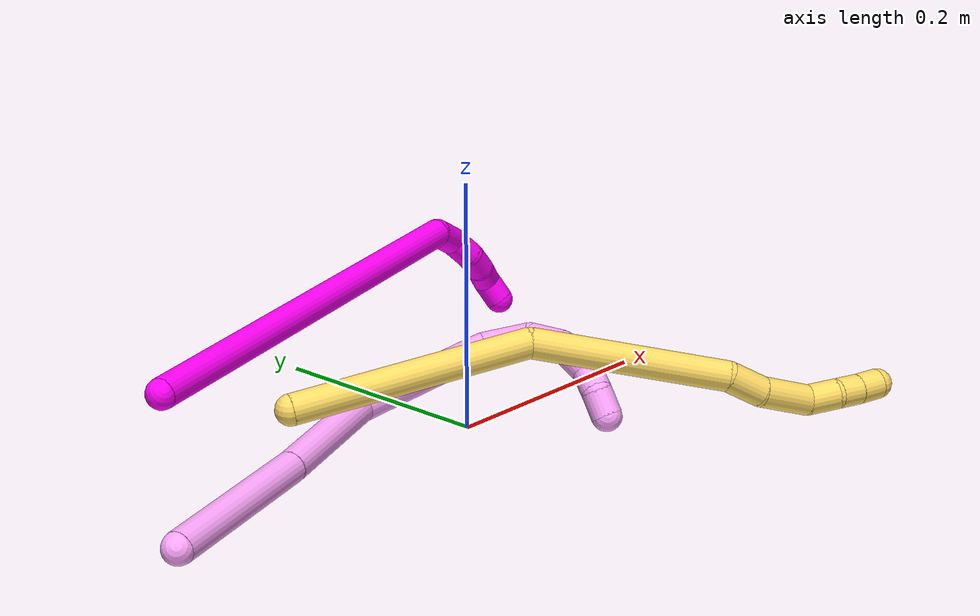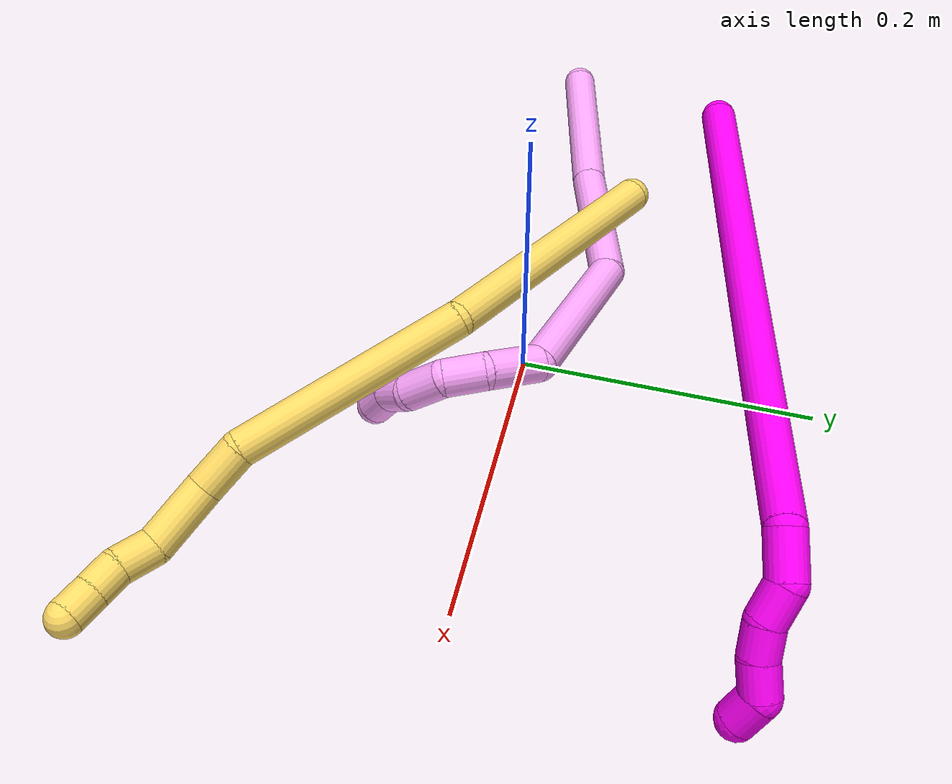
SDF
<sdf version="1.7">
 <world name="default">
  <model name="photoneo_s_sensor">
   <static>1</static>
   <pose>0 0 2 1.57079 1.57079 3.14159</pose>
   <link name="link">
    <inertial><mass>0.1</mass></inertial>
    <sensor name="sensor" type="depth">
     <update_rate>30</update_rate>
     <camera>
      <horizontal_fov>1.22</horizontal_fov>
      <image><width>1920</width><height>1200</height><format>B8G8R8</format></image>
      <clip><near>0.1</near><far>4</far></clip>
      <depth_camera><output>points</output></depth_camera>
     </camera>
     <plugin name="camera_plugin" filename="libgazebo_ros_depth_camera.so">
      <baseline>0.2</baseline>
      <alwaysOn>1</alwaysOn>
      <updateRate>0.0</updateRate>
      <cameraName>camera_ir</cameraName>
      <imageTopicName>/camera/color/image_raw</imageTopicName>
      <cameraInfoTopicName>/camera/color/camera_info</cameraInfoTopicName>
      <depthImageTopicName>/camera/depth/image_raw</depthImageTopicName>
      <depthImageCameraInfoTopicName>/camera/depth/camera_info</depthImageCameraInfoTopicName>
      <pointCloudTopicName>/camera/depth/points</pointCloudTopicName>
      <frameName>fr_optical</frameName>
      <pointCloudCutoff>0.1</pointCloudCutoff>
      <pointCloudCutoffMax>2.0</pointCloudCutoffMax>
      <distortionK1>0</distortionK1>
      <distortionK2>0</distortionK2>
      <distortionK3>0</distortionK3>
      <distortionT1>0</distortionT1>
      <distortionT2>0</distortionT2>
      <CxPrime>0</CxPrime>
      <Cx>0</Cx>
      <Cy>0</Cy>
      <focalLength>0</focalLength>
      <hackBaseline>0</hackBaseline>
     </plugin>
    </sensor>
   </link>
  </model>
  <model name="bin">
   <static>1</static>
   <link name="bottom">
    <collision name="collision-bottom">
     <pose>0 0 -0.01 0 -0 0</pose>
     <geometry><box><size>0.8 0.6 0.02</size></box></geometry>
     <surface>
      <friction><ode><mu>100</mu><mu2>100</mu2></ode></friction>
      <contact><collide_bitmask>65535</collide_bitmask></contact>
     </surface>
    </collision>
   </link>
   <link name="west_wall">
    <collision name="collision-west_wall">
     <pose>-0.41 0 0.1 0 -0 0</pose>
     <geometry><box><size>0.02 0.6 0.2</size></box></geometry>
     <surface>
      <friction><ode><mu>100</mu><mu2>100</mu2></ode></friction>
      <contact><collide_bitmask>65535</collide_bitmask></contact>
     </surface>
    </collision>
   </link>
   <link name="east_wall">
    <collision name="collision-east_wall">
     <pose>0.41 0 0.1 0 -0 0</pose>
     <geometry><box><size>0.02 0.6 0.2</size></box></geometry>
     <surface>
      <friction><ode><mu>100</mu><mu2>100</mu2></ode></friction>
      <contact><collide_bitmask>65535</collide_bitmask></contact>
     </surface>
    </collision>
   </link>
   <link name="south_wall">
    <collision name="collision-south_wall">
     <pose>0 -0.31 0.1 0 -0 0</pose>
     <geometry><box><size>0.8 0.02 0.2</size></box></geometry>
     <surface>
      <friction><ode><mu>100</mu><mu2>100</mu2></ode></friction>
      <contact><collide_bitmask>65535</collide_bitmask></contact>
     </surface>
    </collision>
   </link>
   <link name="north_wall">
    <collision name="collision-north_wall">
     <pose>0 0.31 0.1 0 -0 0</pose>
     <geometry><box><size>0.8 0.02 0.2</size></box></geometry>
     <surface>
      <friction><ode><mu>100</mu><mu2>100</mu2></ode></friction>
      <contact><collide_bitmask>65535</collide_bitmask></contact>
     </surface>
    </collision>
   </link>
  </model>
  <model name="4">
   <static>0</static>
   <link name="4">
    <collision name="collision-cylinder-e_1_1_4">
     <pose>0.046849 0.014359 -0.047673 -2.84904 0.754995 -2.43009</pose>
     <geometry><cylinder><radius>0.0125</radius><length>0.13673</length></cylinder></geometry>
     <surface>
      <friction><ode><mu>1.16</mu><mu2>1.16</mu2><slip1>0</slip1><slip2>0</slip2></ode></friction>
      <contact><ode><kp>1e+06</kp><kd>1</kd><max_vel>0</max_vel><min_depth>0.001</min_depth></ode></contact>
     </surface>
    </collision>
    <visual name="visual-cylinder-e_1_1_4">
     <pose>0.046849 0.014359 -0.047673 -2.84904 0.754995 -2.43009</pose>
     <geometry><cylinder><radius>0.0125</radius><length>0.13673</length></cylinder></geometry>
     <material><ambient>1 0.65098 0.996078 1</ambient></material>
    </visual>
    <collision name="collision-cylinder-e_2_4_5">
     <pose>0.129032 0.043136 -0.133375 -2.77918 0.715284 -2.22994</pose>
     <geometry><cylinder><radius>0.0125</radius><length>0.10775</length></cylinder></geometry>
     <surface>
      <friction><ode><mu>1.16</mu><mu2>1.16</mu2><slip1>0</slip1><slip2>0</slip2></ode></friction>
      <contact><ode><kp>1e+06</kp><kd>1</kd><max_vel>0</max_vel><min_depth>0.001</min_depth></ode></contact>
     </surface>
    </collision>
    <visual name="visual-cylinder-e_2_4_5">
     <pose>0.129032 0.043136 -0.133375 -2.77918 0.715284 -2.22994</pose>
     <geometry><cylinder><radius>0.0125</radius><length>0.10775</length></cylinder></geometry>
     <material><ambient>1 0.65098 0.996078 1</ambient></material>
    </visual>
    <collision name="collision-cylinder-e_3_5_6">
     <pose>0.220855 0.058849 -0.191584 -3.07759 1.22703 -3.05073</pose>
     <geometry><cylinder><radius>0.0125</radius><length>0.120002</length></cylinder></geometry>
     <surface>
      <friction><ode><mu>1.16</mu><mu2>1.16</mu2><slip1>0</slip1><slip2>0</slip2></ode></friction>
      <contact><ode><kp>1e+06</kp><kd>1</kd><max_vel>0</max_vel><min_depth>0.001</min_depth></ode></contact>
     </surface>
    </collision>
    <visual name="visual-cylinder-e_3_5_6">
     <pose>0.220855 0.058849 -0.191584 -3.07759 1.22703 -3.05073</pose>
     <geometry><cylinder><radius>0.0125</radius><length>0.120002</length></cylinder></geometry>
     <material><ambient>1 0.65098 0.996078 1</ambient></material>
    </visual>
    <collision name="collision-cylinder-e_4_6_7">
     <pose>0.294668 0.054033 -0.207148 0.923546 1.15457 0.626877</pose>
     <geometry><cylinder><radius>0.0125</radius><length>0.03788</length></cylinder></geometry>
     <surface>
      <friction><ode><mu>1.16</mu><mu2>1.16</mu2><slip1>0</slip1><slip2>0</slip2></ode></friction>
      <contact><ode><kp>1e+06</kp><kd>1</kd><max_vel>0</max_vel><min_depth>0.001</min_depth></ode></contact>
     </surface>
    </collision>
    <visual name="visual-cylinder-e_4_6_7">
     <pose>0.294668 0.054033 -0.207148 0.923546 1.15457 0.626877</pose>
     <geometry><cylinder><radius>0.0125</radius><length>0.03788</length></cylinder></geometry>
     <material><ambient>1 0.65098 0.996078 1</ambient></material>
    </visual>
    <collision name="collision-cylinder-e_5_7_8">
     <pose>0.321183 0.038396 -0.198729 1.19116 0.730584 0.507197</pose>
     <geometry><cylinder><radius>0.0125</radius><length>0.02755</length></cylinder></geometry>
     <surface>
      <friction><ode><mu>1.16</mu><mu2>1.16</mu2><slip1>0</slip1><slip2>0</slip2></ode></friction>
      <contact><ode><kp>1e+06</kp><kd>1</kd><max_vel>0</max_vel><min_depth>0.001</min_depth></ode></contact>
     </surface>
    </collision>
    <visual name="visual-cylinder-e_5_7_8">
     <pose>0.321183 0.038396 -0.198729 1.19116 0.730584 0.507197</pose>
     <geometry><cylinder><radius>0.0125</radius><length>0.02755</length></cylinder></geometry>
     <material><ambient>1 0.65098 0.996078 1</ambient></material>
    </visual>
    <collision name="collision-cylinder-e_6_8_9">
     <pose>0.333935 0.015329 -0.1936 1.47315 0.255939 0.232318</pose>
     <geometry><cylinder><radius>0.0125</radius><length>0.028122</length></cylinder></geometry>
     <surface>
      <friction><ode><mu>1.16</mu><mu2>1.16</mu2><slip1>0</slip1><slip2>0</slip2></ode></friction>
      <contact><ode><kp>1e+06</kp><kd>1</kd><max_vel>0</max_vel><min_depth>0.001</min_depth></ode></contact>
     </surface>
    </collision>
    <visual name="visual-cylinder-e_6_8_9">
     <pose>0.333935 0.015329 -0.1936 1.47315 0.255939 0.232318</pose>
     <geometry><cylinder><radius>0.0125</radius><length>0.028122</length></cylinder></geometry>
     <material><ambient>1 0.65098 0.996078 1</ambient></material>
    </visual>
    <collision name="collision-cylinder-e_7_9_10">
     <pose>0.336183 -0.007887 -0.189457 1.28753 -0.129441 -0.097194</pose>
     <geometry><cylinder><radius>0.0125</radius><length>0.020329</length></cylinder></geometry>
     <surface>
      <friction><ode><mu>1.16</mu><mu2>1.16</mu2><slip1>0</slip1><slip2>0</slip2></ode></friction>
      <contact><ode><kp>1e+06</kp><kd>1</kd><max_vel>0</max_vel><min_depth>0.001</min_depth></ode></contact>
     </surface>
    </collision>
    <visual name="visual-cylinder-e_7_9_10">
     <pose>0.336183 -0.007887 -0.189457 1.28753 -0.129441 -0.097194</pose>
     <geometry><cylinder><radius>0.0125</radius><length>0.020329</length></cylinder></geometry>
     <material><ambient>1 0.65098 0.996078 1</ambient></material>
    </visual>
    <collision name="collision-cylinder-e_8_10_2">
     <pose>0.333588 -0.028253 -0.187724 1.67187 -0.118865 -0.131496</pose>
     <geometry><cylinder><radius>0.0125</radius><length>0.021638</length></cylinder></geometry>
     <surface>
      <friction><ode><mu>1.16</mu><mu2>1.16</mu2><slip1>0</slip1><slip2>0</slip2></ode></friction>
      <contact><ode><kp>1e+06</kp><kd>1</kd><max_vel>0</max_vel><min_depth>0.001</min_depth></ode></contact>
     </surface>
    </collision>
    <visual name="visual-cylinder-e_8_10_2">
     <pose>0.333588 -0.028253 -0.187724 1.67187 -0.118865 -0.131496</pose>
     <geometry><cylinder><radius>0.0125</radius><length>0.021638</length></cylinder></geometry>
     <material><ambient>1 0.65098 0.996078 1</ambient></material>
    </visual>
    <collision name="collision-sphere-2">
     <pose>0.332305 -0.03894 -0.188808 0 -0 0</pose>
     <geometry><sphere><radius>0.0125</radius></sphere></geometry>
     <surface>
      <friction><ode><mu>1.16</mu><mu2>1.16</mu2><slip1>0</slip1><slip2>0</slip2></ode></friction>
      <contact><ode><kp>1e+06</kp><kd>1</kd><max_vel>0</max_vel><min_depth>0.001</min_depth></ode></contact>
     </surface>
    </collision>
    <visual name="visual-sphere-2">
     <pose>0.332305 -0.03894 -0.188808 0 -0 0</pose>
     <geometry><sphere><radius>0.0125</radius></sphere></geometry>
     <material><ambient>1 0.65098 0.996078 1</ambient></material>
    </visual>
    <collision name="collision-sphere-10">
     <pose>0.334871 -0.017565 -0.18664 0 -0 0</pose>
     <geometry><sphere><radius>0.0125</radius></sphere></geometry>
     <surface>
      <friction><ode><mu>1.16</mu><mu2>1.16</mu2><slip1>0</slip1><slip2>0</slip2></ode></friction>
      <contact><ode><kp>1e+06</kp><kd>1</kd><max_vel>0</max_vel><min_depth>0.001</min_depth></ode></contact>
     </surface>
    </collision>
    <visual name="visual-sphere-10">
     <pose>0.334871 -0.017565 -0.18664 0 -0 0</pose>
     <geometry><sphere><radius>0.0125</radius></sphere></geometry>
     <material><ambient>1 0.65098 0.996078 1</ambient></material>
    </visual>
    <collision name="collision-sphere-9">
     <pose>0.337495 0.001791 -0.192274 0 -0 0</pose>
     <geometry><sphere><radius>0.0125</radius></sphere></geometry>
     <surface>
      <friction><ode><mu>1.16</mu><mu2>1.16</mu2><slip1>0</slip1><slip2>0</slip2></ode></friction>
      <contact><ode><kp>1e+06</kp><kd>1</kd><max_vel>0</max_vel><min_depth>0.001</min_depth></ode></contact>
     </surface>
    </collision>
    <visual name="visual-sphere-9">
     <pose>0.337495 0.001791 -0.192274 0 -0 0</pose>
     <geometry><sphere><radius>0.0125</radius></sphere></geometry>
     <material><ambient>1 0.65098 0.996078 1</ambient></material>
    </visual>
    <collision name="collision-sphere-4">
     <pose>0.093699 0.028718 -0.095346 0 -0 0</pose>
     <geometry><sphere><radius>0.0125</radius></sphere></geometry>
     <surface>
      <friction><ode><mu>1.16</mu><mu2>1.16</mu2><slip1>0</slip1><slip2>0</slip2></ode></friction>
      <contact><ode><kp>1e+06</kp><kd>1</kd><max_vel>0</max_vel><min_depth>0.001</min_depth></ode></contact>
     </surface>
    </collision>
    <visual name="visual-sphere-4">
     <pose>0.093699 0.028718 -0.095346 0 -0 0</pose>
     <geometry><sphere><radius>0.0125</radius></sphere></geometry>
     <material><ambient>1 0.65098 0.996078 1</ambient></material>
    </visual>
    <collision name="collision-sphere-1">
     <geometry><sphere><radius>0.0125</radius></sphere></geometry>
     <surface>
      <friction><ode><mu>1.16</mu><mu2>1.16</mu2><slip1>0</slip1><slip2>0</slip2></ode></friction>
      <contact><ode><kp>1e+06</kp><kd>1</kd><max_vel>0</max_vel><min_depth>0.001</min_depth></ode></contact>
     </surface>
    </collision>
    <visual name="visual-sphere-1">
     <geometry><sphere><radius>0.0125</radius></sphere></geometry>
     <material><ambient>1 0.65098 0.996078 1</ambient></material>
    </visual>
    <collision name="collision-sphere-8">
     <pose>0.330376 0.028867 -0.194927 0 -0 0</pose>
     <geometry><sphere><radius>0.0125</radius></sphere></geometry>
     <surface>
      <friction><ode><mu>1.16</mu><mu2>1.16</mu2><slip1>0</slip1><slip2>0</slip2></ode></friction>
      <contact><ode><kp>1e+06</kp><kd>1</kd><max_vel>0</max_vel><min_depth>0.001</min_depth></ode></contact>
     </surface>
    </collision>
    <visual name="visual-sphere-8">
     <pose>0.330376 0.028867 -0.194927 0 -0 0</pose>
     <geometry><sphere><radius>0.0125</radius></sphere></geometry>
     <material><ambient>1 0.65098 0.996078 1</ambient></material>
    </visual>
    <collision name="collision-sphere-5">
     <pose>0.164364 0.057555 -0.171403 0 -0 0</pose>
     <geometry><sphere><radius>0.0125</radius></sphere></geometry>
     <surface>
      <friction><ode><mu>1.16</mu><mu2>1.16</mu2><slip1>0</slip1><slip2>0</slip2></ode></friction>
      <contact><ode><kp>1e+06</kp><kd>1</kd><max_vel>0</max_vel><min_depth>0.001</min_depth></ode></contact>
     </surface>
    </collision>
    <visual name="visual-sphere-5">
     <pose>0.164364 0.057555 -0.171403 0 -0 0</pose>
     <geometry><sphere><radius>0.0125</radius></sphere></geometry>
     <material><ambient>1 0.65098 0.996078 1</ambient></material>
    </visual>
    <collision name="collision-sphere-6">
     <pose>0.277345 0.060142 -0.211766 0 -0 0</pose>
     <geometry><sphere><radius>0.0125</radius></sphere></geometry>
     <surface>
      <friction><ode><mu>1.16</mu><mu2>1.16</mu2><slip1>0</slip1><slip2>0</slip2></ode></friction>
      <contact><ode><kp>1e+06</kp><kd>1</kd><max_vel>0</max_vel><min_depth>0.001</min_depth></ode></contact>
     </surface>
    </collision>
    <visual name="visual-sphere-6">
     <pose>0.277345 0.060142 -0.211766 0 -0 0</pose>
     <geometry><sphere><radius>0.0125</radius></sphere></geometry>
     <material><ambient>1 0.65098 0.996078 1</ambient></material>
    </visual>
    <collision name="collision-sphere-7">
     <pose>0.311991 0.047925 -0.20253 0 -0 0</pose>
     <geometry><sphere><radius>0.0125</radius></sphere></geometry>
     <surface>
      <friction><ode><mu>1.16</mu><mu2>1.16</mu2><slip1>0</slip1><slip2>0</slip2></ode></friction>
      <contact><ode><kp>1e+06</kp><kd>1</kd><max_vel>0</max_vel><min_depth>0.001</min_depth></ode></contact>
     </surface>
    </collision>
    <visual name="visual-sphere-7">
     <pose>0.311991 0.047925 -0.20253 0 -0 0</pose>
     <geometry><sphere><radius>0.0125</radius></sphere></geometry>
     <material><ambient>1 0.65098 0.996078 1</ambient></material>
    </visual>
    <inertial>
     <pose>0.180531 0.032874 -0.141119 0 -0 0</pose>
     <mass>0.5</mass>
     <inertia>
      <ixx>-0.000355</ixx>
      <ixy>0</ixy>
      <ixz>0</ixz>
      <iyy>0.000252</iyy>
      <iyz>0</iyz>
      <izz>-0.000452</izz>
     </inertia>
    </inertial>
   </link>
   <pose>-0.309971 -0.020373 0.01199 0.952978 -0.401771 -0.521548</pose>
  </model>
  <model name="5">
   <static>0</static>
   <link name="5">
    <collision name="collision-cylinder-e_1_1_4">
     <pose>0.0882 -0.042085 0.009044 1.35912 1.11676 0.934816</pose>
     <geometry><cylinder><radius>0.0125</radius><length>0.196286</length></cylinder></geometry>
     <surface>
      <friction><ode><mu>1.16</mu><mu2>1.16</mu2><slip1>0</slip1><slip2>0</slip2></ode></friction>
      <contact><ode><kp>1e+06</kp><kd>1</kd><max_vel>0</max_vel><min_depth>0.001</min_depth></ode></contact>
     </surface>
    </collision>
    <visual name="visual-cylinder-e_1_1_4">
     <pose>0.0882 -0.042085 0.009044 1.35912 1.11676 0.934816</pose>
     <geometry><cylinder><radius>0.0125</radius><length>0.196286</length></cylinder></geometry>
     <material><ambient>1 0.858824 0.4 1</ambient></material>
    </visual>
    <collision name="collision-cylinder-e_2_4_5">
     <pose>0.230474 -0.141181 0.001838 1.84846 0.739493 0.948741</pose>
     <geometry><cylinder><radius>0.0125</radius><length>0.160479</length></cylinder></geometry>
     <surface>
      <friction><ode><mu>1.16</mu><mu2>1.16</mu2><slip1>0</slip1><slip2>0</slip2></ode></friction>
      <contact><ode><kp>1e+06</kp><kd>1</kd><max_vel>0</max_vel><min_depth>0.001</min_depth></ode></contact>
     </surface>
    </collision>
    <visual name="visual-cylinder-e_2_4_5">
     <pose>0.230474 -0.141181 0.001838 1.84846 0.739493 0.948741</pose>
     <geometry><cylinder><radius>0.0125</radius><length>0.160479</length></cylinder></geometry>
     <material><ambient>1 0.858824 0.4 1</ambient></material>
    </visual>
    <collision name="collision-cylinder-e_3_5_6">
     <pose>0.295309 -0.20692 -0.02251 2.31881 0.734927 1.44592</pose>
     <geometry><cylinder><radius>0.0125</radius><length>0.032097</length></cylinder></geometry>
     <surface>
      <friction><ode><mu>1.16</mu><mu2>1.16</mu2><slip1>0</slip1><slip2>0</slip2></ode></friction>
      <contact><ode><kp>1e+06</kp><kd>1</kd><max_vel>0</max_vel><min_depth>0.001</min_depth></ode></contact>
     </surface>
    </collision>
    <visual name="visual-cylinder-e_3_5_6">
     <pose>0.295309 -0.20692 -0.02251 2.31881 0.734927 1.44592</pose>
     <geometry><cylinder><radius>0.0125</radius><length>0.032097</length></cylinder></geometry>
     <material><ambient>1 0.858824 0.4 1</ambient></material>
    </visual>
    <collision name="collision-cylinder-e_4_6_7">
     <pose>0.324783 -0.225481 -0.038476 2.24563 0.97843 1.67301</pose>
     <geometry><cylinder><radius>0.0125</radius><length>0.045111</length></cylinder></geometry>
     <surface>
      <friction><ode><mu>1.16</mu><mu2>1.16</mu2><slip1>0</slip1><slip2>0</slip2></ode></friction>
      <contact><ode><kp>1e+06</kp><kd>1</kd><max_vel>0</max_vel><min_depth>0.001</min_depth></ode></contact>
     </surface>
    </collision>
    <visual name="visual-cylinder-e_4_6_7">
     <pose>0.324783 -0.225481 -0.038476 2.24563 0.97843 1.67301</pose>
     <geometry><cylinder><radius>0.0125</radius><length>0.045111</length></cylinder></geometry>
     <material><ambient>1 0.858824 0.4 1</ambient></material>
    </visual>
    <collision name="collision-cylinder-e_5_7_8">
     <pose>0.354048 -0.242435 -0.045089 1.39632 0.970028 0.832747</pose>
     <geometry><cylinder><radius>0.0125</radius><length>0.025585</length></cylinder></geometry>
     <surface>
      <friction><ode><mu>1.16</mu><mu2>1.16</mu2><slip1>0</slip1><slip2>0</slip2></ode></friction>
      <contact><ode><kp>1e+06</kp><kd>1</kd><max_vel>0</max_vel><min_depth>0.001</min_depth></ode></contact>
     </surface>
    </collision>
    <visual name="visual-cylinder-e_5_7_8">
     <pose>0.354048 -0.242435 -0.045089 1.39632 0.970028 0.832747</pose>
     <geometry><cylinder><radius>0.0125</radius><length>0.025585</length></cylinder></geometry>
     <material><ambient>1 0.858824 0.4 1</ambient></material>
    </visual>
    <collision name="collision-cylinder-e_6_8_9">
     <pose>0.374106 -0.253011 -0.044395 1.73193 1.21805 1.37363</pose>
     <geometry><cylinder><radius>0.0125</radius><length>0.020258</length></cylinder></geometry>
     <surface>
      <friction><ode><mu>1.16</mu><mu2>1.16</mu2><slip1>0</slip1><slip2>0</slip2></ode></friction>
      <contact><ode><kp>1e+06</kp><kd>1</kd><max_vel>0</max_vel><min_depth>0.001</min_depth></ode></contact>
     </surface>
    </collision>
    <visual name="visual-cylinder-e_6_8_9">
     <pose>0.374106 -0.253011 -0.044395 1.73193 1.21805 1.37363</pose>
     <geometry><cylinder><radius>0.0125</radius><length>0.020258</length></cylinder></geometry>
     <material><ambient>1 0.858824 0.4 1</ambient></material>
    </visual>
    <collision name="collision-cylinder-e_7_9_2">
     <pose>0.393164 -0.259718 -0.045013 1.5881 1.24248 1.25891</pose>
     <geometry><cylinder><radius>0.0125</radius><length>0.020183</length></cylinder></geometry>
     <surface>
      <friction><ode><mu>1.16</mu><mu2>1.16</mu2><slip1>0</slip1><slip2>0</slip2></ode></friction>
      <contact><ode><kp>1e+06</kp><kd>1</kd><max_vel>0</max_vel><min_depth>0.001</min_depth></ode></contact>
     </surface>
    </collision>
    <visual name="visual-cylinder-e_7_9_2">
     <pose>0.393164 -0.259718 -0.045013 1.5881 1.24248 1.25891</pose>
     <geometry><cylinder><radius>0.0125</radius><length>0.020183</length></cylinder></geometry>
     <material><ambient>1 0.858824 0.4 1</ambient></material>
    </visual>
    <collision name="collision-sphere-2">
     <pose>0.402716 -0.262972 -0.045069 0 -0 0</pose>
     <geometry><sphere><radius>0.0125</radius></sphere></geometry>
     <surface>
      <friction><ode><mu>1.16</mu><mu2>1.16</mu2><slip1>0</slip1><slip2>0</slip2></ode></friction>
      <contact><ode><kp>1e+06</kp><kd>1</kd><max_vel>0</max_vel><min_depth>0.001</min_depth></ode></contact>
     </surface>
    </collision>
    <visual name="visual-sphere-2">
     <pose>0.402716 -0.262972 -0.045069 0 -0 0</pose>
     <geometry><sphere><radius>0.0125</radius></sphere></geometry>
     <material><ambient>1 0.858824 0.4 1</ambient></material>
    </visual>
    <collision name="collision-sphere-9">
     <pose>0.383612 -0.256465 -0.044956 0 -0 0</pose>
     <geometry><sphere><radius>0.0125</radius></sphere></geometry>
     <surface>
      <friction><ode><mu>1.16</mu><mu2>1.16</mu2><slip1>0</slip1><slip2>0</slip2></ode></friction>
      <contact><ode><kp>1e+06</kp><kd>1</kd><max_vel>0</max_vel><min_depth>0.001</min_depth></ode></contact>
     </surface>
    </collision>
    <visual name="visual-sphere-9">
     <pose>0.383612 -0.256465 -0.044956 0 -0 0</pose>
     <geometry><sphere><radius>0.0125</radius></sphere></geometry>
     <material><ambient>1 0.858824 0.4 1</ambient></material>
    </visual>
    <collision name="collision-sphere-4">
     <pose>0.176399 -0.08417 0.018088 0 -0 0</pose>
     <geometry><sphere><radius>0.0125</radius></sphere></geometry>
     <surface>
      <friction><ode><mu>1.16</mu><mu2>1.16</mu2><slip1>0</slip1><slip2>0</slip2></ode></friction>
      <contact><ode><kp>1e+06</kp><kd>1</kd><max_vel>0</max_vel><min_depth>0.001</min_depth></ode></contact>
     </surface>
    </collision>
    <visual name="visual-sphere-4">
     <pose>0.176399 -0.08417 0.018088 0 -0 0</pose>
     <geometry><sphere><radius>0.0125</radius></sphere></geometry>
     <material><ambient>1 0.858824 0.4 1</ambient></material>
    </visual>
    <collision name="collision-sphere-1">
     <geometry><sphere><radius>0.0125</radius></sphere></geometry>
     <surface>
      <friction><ode><mu>1.16</mu><mu2>1.16</mu2><slip1>0</slip1><slip2>0</slip2></ode></friction>
      <contact><ode><kp>1e+06</kp><kd>1</kd><max_vel>0</max_vel><min_depth>0.001</min_depth></ode></contact>
     </surface>
    </collision>
    <visual name="visual-sphere-1">
     <geometry><sphere><radius>0.0125</radius></sphere></geometry>
     <material><ambient>1 0.858824 0.4 1</ambient></material>
    </visual>
    <collision name="collision-sphere-8">
     <pose>0.364601 -0.249557 -0.043834 0 -0 0</pose>
     <geometry><sphere><radius>0.0125</radius></sphere></geometry>
     <surface>
      <friction><ode><mu>1.16</mu><mu2>1.16</mu2><slip1>0</slip1><slip2>0</slip2></ode></friction>
      <contact><ode><kp>1e+06</kp><kd>1</kd><max_vel>0</max_vel><min_depth>0.001</min_depth></ode></contact>
     </surface>
    </collision>
    <visual name="visual-sphere-8">
     <pose>0.364601 -0.249557 -0.043834 0 -0 0</pose>
     <geometry><sphere><radius>0.0125</radius></sphere></geometry>
     <material><ambient>1 0.858824 0.4 1</ambient></material>
    </visual>
    <collision name="collision-sphere-5">
     <pose>0.284548 -0.198192 -0.014412 0 -0 0</pose>
     <geometry><sphere><radius>0.0125</radius></sphere></geometry>
     <surface>
      <friction><ode><mu>1.16</mu><mu2>1.16</mu2><slip1>0</slip1><slip2>0</slip2></ode></friction>
      <contact><ode><kp>1e+06</kp><kd>1</kd><max_vel>0</max_vel><min_depth>0.001</min_depth></ode></contact>
     </surface>
    </collision>
    <visual name="visual-sphere-5">
     <pose>0.284548 -0.198192 -0.014412 0 -0 0</pose>
     <geometry><sphere><radius>0.0125</radius></sphere></geometry>
     <material><ambient>1 0.858824 0.4 1</ambient></material>
    </visual>
    <collision name="collision-sphere-6">
     <pose>0.30607 -0.215647 -0.030608 0 -0 0</pose>
     <geometry><sphere><radius>0.0125</radius></sphere></geometry>
     <surface>
      <friction><ode><mu>1.16</mu><mu2>1.16</mu2><slip1>0</slip1><slip2>0</slip2></ode></friction>
      <contact><ode><kp>1e+06</kp><kd>1</kd><max_vel>0</max_vel><min_depth>0.001</min_depth></ode></contact>
     </surface>
    </collision>
    <visual name="visual-sphere-6">
     <pose>0.30607 -0.215647 -0.030608 0 -0 0</pose>
     <geometry><sphere><radius>0.0125</radius></sphere></geometry>
     <material><ambient>1 0.858824 0.4 1</ambient></material>
    </visual>
    <collision name="collision-sphere-7">
     <pose>0.343496 -0.235314 -0.046344 0 -0 0</pose>
     <geometry><sphere><radius>0.0125</radius></sphere></geometry>
     <surface>
      <friction><ode><mu>1.16</mu><mu2>1.16</mu2><slip1>0</slip1><slip2>0</slip2></ode></friction>
      <contact><ode><kp>1e+06</kp><kd>1</kd><max_vel>0</max_vel><min_depth>0.001</min_depth></ode></contact>
     </surface>
    </collision>
    <visual name="visual-sphere-7">
     <pose>0.343496 -0.235314 -0.046344 0 -0 0</pose>
     <geometry><sphere><radius>0.0125</radius></sphere></geometry>
     <material><ambient>1 0.858824 0.4 1</ambient></material>
    </visual>
    <inertial>
     <pose>0.206002 -0.128601 -0.006699 0 -0 0</pose>
     <mass>0.5</mass>
     <inertia>
      <ixx>0.000795</ixx>
      <ixy>0</ixy>
      <ixz>0</ixz>
      <iyy>0.001097</iyy>
      <iyz>0</iyz>
      <izz>-0.000297</izz>
     </inertia>
    </inertial>
   </link>
   <pose>-0.142162 0.049482 0.044172 0.076258 -0.091811 -0.009441</pose>
  </model>
  <model name="10">
   <static>0</static>
   <link name="10">
    <collision name="collision-cylinder-e_1_1_4">
     <pose>0.080344 0.157472 0.072674 -1.13842 0.433826 -0.280175</pose>
     <geometry><cylinder><radius>0.0125</radius><length>0.382278</length></cylinder></geometry>
     <surface>
      <friction><ode><mu>1.16</mu><mu2>1.16</mu2><slip1>0</slip1><slip2>0</slip2></ode></friction>
      <contact><ode><kp>1e+06</kp><kd>1</kd><max_vel>0</max_vel><min_depth>0.001</min_depth></ode></contact>
     </surface>
    </collision>
    <visual name="visual-cylinder-e_1_1_4">
     <pose>0.080344 0.157472 0.072674 -1.13842 0.433826 -0.280175</pose>
     <geometry><cylinder><radius>0.0125</radius><length>0.382278</length></cylinder></geometry>
     <material><ambient>1 0 0.964706 1</ambient></material>
    </visual>
    <collision name="collision-cylinder-e_2_4_5">
     <pose>0.160139 0.325891 0.15554 -0.821099 -0.036768 0.016006</pose>
     <geometry><cylinder><radius>0.0125</radius><length>0.029934</length></cylinder></geometry>
     <surface>
      <friction><ode><mu>1.16</mu><mu2>1.16</mu2><slip1>0</slip1><slip2>0</slip2></ode></friction>
      <contact><ode><kp>1e+06</kp><kd>1</kd><max_vel>0</max_vel><min_depth>0.001</min_depth></ode></contact>
     </surface>
    </collision>
    <visual name="visual-cylinder-e_2_4_5">
     <pose>0.160139 0.325891 0.15554 -0.821099 -0.036768 0.016006</pose>
     <geometry><cylinder><radius>0.0125</radius><length>0.029934</length></cylinder></geometry>
     <material><ambient>1 0 0.964706 1</ambient></material>
    </visual>
    <collision name="collision-cylinder-e_3_5_6">
     <pose>0.15324 0.345653 0.170392 -1.08444 -0.566946 0.34747</pose>
     <geometry><cylinder><radius>0.0125</radius><length>0.023642</length></cylinder></geometry>
     <surface>
      <friction><ode><mu>1.16</mu><mu2>1.16</mu2><slip1>0</slip1><slip2>0</slip2></ode></friction>
      <contact><ode><kp>1e+06</kp><kd>1</kd><max_vel>0</max_vel><min_depth>0.001</min_depth></ode></contact>
     </surface>
    </collision>
    <visual name="visual-cylinder-e_3_5_6">
     <pose>0.15324 0.345653 0.170392 -1.08444 -0.566946 0.34747</pose>
     <geometry><cylinder><radius>0.0125</radius><length>0.023642</length></cylinder></geometry>
     <material><ambient>1 0 0.964706 1</ambient></material>
    </visual>
    <collision name="collision-cylinder-e_4_6_7">
     <pose>0.142542 0.360814 0.182043 -0.737109 -0.431733 0.168972</pose>
     <geometry><cylinder><radius>0.0125</radius><length>0.020788</length></cylinder></geometry>
     <surface>
      <friction><ode><mu>1.16</mu><mu2>1.16</mu2><slip1>0</slip1><slip2>0</slip2></ode></friction>
      <contact><ode><kp>1e+06</kp><kd>1</kd><max_vel>0</max_vel><min_depth>0.001</min_depth></ode></contact>
     </surface>
    </collision>
    <visual name="visual-cylinder-e_4_6_7">
     <pose>0.142542 0.360814 0.182043 -0.737109 -0.431733 0.168972</pose>
     <geometry><cylinder><radius>0.0125</radius><length>0.020788</length></cylinder></geometry>
     <material><ambient>1 0 0.964706 1</ambient></material>
    </visual>
    <collision name="collision-cylinder-e_5_7_8">
     <pose>0.135388 0.372969 0.197881 -0.581056 -0.259027 0.077842</pose>
     <geometry><cylinder><radius>0.0125</radius><length>0.021901</length></cylinder></geometry>
     <surface>
      <friction><ode><mu>1.16</mu><mu2>1.16</mu2><slip1>0</slip1><slip2>0</slip2></ode></friction>
      <contact><ode><kp>1e+06</kp><kd>1</kd><max_vel>0</max_vel><min_depth>0.001</min_depth></ode></contact>
     </surface>
    </collision>
    <visual name="visual-cylinder-e_5_7_8">
     <pose>0.135388 0.372969 0.197881 -0.581056 -0.259027 0.077842</pose>
     <geometry><cylinder><radius>0.0125</radius><length>0.021901</length></cylinder></geometry>
     <material><ambient>1 0 0.964706 1</ambient></material>
    </visual>
    <collision name="collision-cylinder-e_6_8_2">
     <pose>0.123825 0.384135 0.209846 -1.04364 -0.955014 0.57836</pose>
     <geometry><cylinder><radius>0.0125</radius><length>0.021456</length></cylinder></geometry>
     <surface>
      <friction><ode><mu>1.16</mu><mu2>1.16</mu2><slip1>0</slip1><slip2>0</slip2></ode></friction>
      <contact><ode><kp>1e+06</kp><kd>1</kd><max_vel>0</max_vel><min_depth>0.001</min_depth></ode></contact>
     </surface>
    </collision>
    <visual name="visual-cylinder-e_6_8_2">
     <pose>0.123825 0.384135 0.209846 -1.04364 -0.955014 0.57836</pose>
     <geometry><cylinder><radius>0.0125</radius><length>0.021456</length></cylinder></geometry>
     <material><ambient>1 0 0.964706 1</ambient></material>
    </visual>
    <collision name="collision-sphere-2">
     <pose>0.115068 0.38949 0.212964 0 -0 0</pose>
     <geometry><sphere><radius>0.0125</radius></sphere></geometry>
     <surface>
      <friction><ode><mu>1.16</mu><mu2>1.16</mu2><slip1>0</slip1><slip2>0</slip2></ode></friction>
      <contact><ode><kp>1e+06</kp><kd>1</kd><max_vel>0</max_vel><min_depth>0.001</min_depth></ode></contact>
     </surface>
    </collision>
    <visual name="visual-sphere-2">
     <pose>0.115068 0.38949 0.212964 0 -0 0</pose>
     <geometry><sphere><radius>0.0125</radius></sphere></geometry>
     <material><ambient>1 0 0.964706 1</ambient></material>
    </visual>
    <collision name="collision-sphere-4">
     <pose>0.160689 0.314944 0.145348 0 -0 0</pose>
     <geometry><sphere><radius>0.0125</radius></sphere></geometry>
     <surface>
      <friction><ode><mu>1.16</mu><mu2>1.16</mu2><slip1>0</slip1><slip2>0</slip2></ode></friction>
      <contact><ode><kp>1e+06</kp><kd>1</kd><max_vel>0</max_vel><min_depth>0.001</min_depth></ode></contact>
     </surface>
    </collision>
    <visual name="visual-sphere-4">
     <pose>0.160689 0.314944 0.145348 0 -0 0</pose>
     <geometry><sphere><radius>0.0125</radius></sphere></geometry>
     <material><ambient>1 0 0.964706 1</ambient></material>
    </visual>
    <collision name="collision-sphere-1">
     <geometry><sphere><radius>0.0125</radius></sphere></geometry>
     <surface>
      <friction><ode><mu>1.16</mu><mu2>1.16</mu2><slip1>0</slip1><slip2>0</slip2></ode></friction>
      <contact><ode><kp>1e+06</kp><kd>1</kd><max_vel>0</max_vel><min_depth>0.001</min_depth></ode></contact>
     </surface>
    </collision>
    <visual name="visual-sphere-1">
     <geometry><sphere><radius>0.0125</radius></sphere></geometry>
     <material><ambient>1 0 0.964706 1</ambient></material>
    </visual>
    <collision name="collision-sphere-8">
     <pose>0.132583 0.37878 0.206729 0 -0 0</pose>
     <geometry><sphere><radius>0.0125</radius></sphere></geometry>
     <surface>
      <friction><ode><mu>1.16</mu><mu2>1.16</mu2><slip1>0</slip1><slip2>0</slip2></ode></friction>
      <contact><ode><kp>1e+06</kp><kd>1</kd><max_vel>0</max_vel><min_depth>0.001</min_depth></ode></contact>
     </surface>
    </collision>
    <visual name="visual-sphere-8">
     <pose>0.132583 0.37878 0.206729 0 -0 0</pose>
     <geometry><sphere><radius>0.0125</radius></sphere></geometry>
     <material><ambient>1 0 0.964706 1</ambient></material>
    </visual>
    <collision name="collision-sphere-5">
     <pose>0.159589 0.336838 0.165732 0 -0 0</pose>
     <geometry><sphere><radius>0.0125</radius></sphere></geometry>
     <surface>
      <friction><ode><mu>1.16</mu><mu2>1.16</mu2><slip1>0</slip1><slip2>0</slip2></ode></friction>
      <contact><ode><kp>1e+06</kp><kd>1</kd><max_vel>0</max_vel><min_depth>0.001</min_depth></ode></contact>
     </surface>
    </collision>
    <visual name="visual-sphere-5">
     <pose>0.159589 0.336838 0.165732 0 -0 0</pose>
     <geometry><sphere><radius>0.0125</radius></sphere></geometry>
     <material><ambient>1 0 0.964706 1</ambient></material>
    </visual>
    <collision name="collision-sphere-6">
     <pose>0.146891 0.354468 0.175053 0 -0 0</pose>
     <geometry><sphere><radius>0.0125</radius></sphere></geometry>
     <surface>
      <friction><ode><mu>1.16</mu><mu2>1.16</mu2><slip1>0</slip1><slip2>0</slip2></ode></friction>
      <contact><ode><kp>1e+06</kp><kd>1</kd><max_vel>0</max_vel><min_depth>0.001</min_depth></ode></contact>
     </surface>
    </collision>
    <visual name="visual-sphere-6">
     <pose>0.146891 0.354468 0.175053 0 -0 0</pose>
     <geometry><sphere><radius>0.0125</radius></sphere></geometry>
     <material><ambient>1 0 0.964706 1</ambient></material>
    </visual>
    <collision name="collision-sphere-7">
     <pose>0.138193 0.367159 0.189033 0 -0 0</pose>
     <geometry><sphere><radius>0.0125</radius></sphere></geometry>
     <surface>
      <friction><ode><mu>1.16</mu><mu2>1.16</mu2><slip1>0</slip1><slip2>0</slip2></ode></friction>
      <contact><ode><kp>1e+06</kp><kd>1</kd><max_vel>0</max_vel><min_depth>0.001</min_depth></ode></contact>
     </surface>
    </collision>
    <visual name="visual-sphere-7">
     <pose>0.138193 0.367159 0.189033 0 -0 0</pose>
     <geometry><sphere><radius>0.0125</radius></sphere></geometry>
     <material><ambient>1 0 0.964706 1</ambient></material>
    </visual>
    <inertial>
     <pose>0.095431 0.204073 0.098173 0 -0 0</pose>
     <mass>0.5</mass>
     <inertia>
      <ixx>0.00292</ixx>
      <ixy>0</ixy>
      <ixz>0</ixz>
      <iyy>0.001241</iyy>
      <iyz>0</iyz>
      <izz>-0.005797</izz>
     </inertia>
    </inertial>
   </link>
   <pose>-0.221401 0.10182 0.066598 -3.10122 -0.891531 1.14166</pose>
  </model>
 </world>
</sdf>
